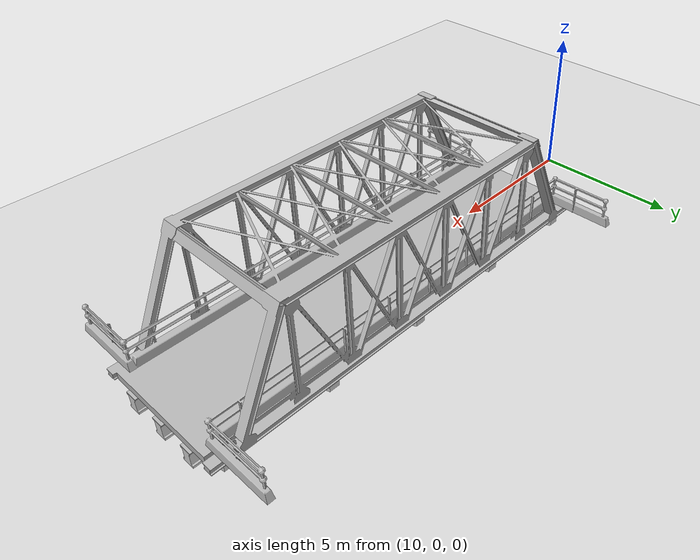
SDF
<?xml version="1.0" ?>
<sdf version="1.10">
  <world name="px4_bridge_world">

    <gravity>0 0 -9.8</gravity>
    <magnetic_field>6e-06 2.3e-05 -4.2e-05</magnetic_field>
    <atmosphere type="adiabatic"/>

    <scene>
      <grid>false</grid>
      <ambient>0.4 0.4 0.4 1</ambient>
      <background>0.7 0.7 0.7 1</background>
      <shadows>true</shadows>
    </scene>

    <!-- SENSOR ENABLING PLUGIN -->
    <plugin name='gz::sim::systems::Sensors' filename='gz-sim-sensors-system'>
      <render_engine>ogre2</render_engine>
    </plugin>

    <!-- SENSOR PLUGINS -->
    <plugin name='gz::sim::systems::Imu' filename='gz-sim-imu-system'/>
    <plugin name='gz::sim::systems::NavSat' filename='gz-sim-navsat-system'/>
    <plugin name='gz::sim::systems::Magnetometer' filename='gz-sim-magnetometer-system'/>
    <plugin name='gz::sim::systems::AirPressure' filename='gz-sim-air-pressure-system'/>

    <plugin filename="gz-sim-physics-system" name="gz::sim::systems::Physics">
      <max_step_size>0.004</max_step_size>
      <real_time_factor>1.0</real_time_factor>
      <real_time_update_rate>250</real_time_update_rate>
    </plugin>
    <plugin filename="gz-sim-scene-broadcaster-system" name="gz::sim::systems::SceneBroadcaster"/>
    <plugin filename="gz-sim-user-commands-system" name="gz::sim::systems::UserCommands"/>
    <plugin filename="gz-sim-sensors-system" name="gz::sim::systems::Sensors">
      <render_engine>ogre2</render_engine>
    </plugin>

    <spherical_coordinates>
      <surface_model>EARTH_WGS84</surface_model>
      <world_frame_orientation>ENU</world_frame_orientation>
      <latitude_deg>47.397742</latitude_deg>
      <longitude_deg>8.545594</longitude_deg>
      <elevation>488.0</elevation>
    </spherical_coordinates>

    <include>
      <uri>https://fuel.gazebosim.org/1.0/OpenRobotics/models/Sun</uri>
    </include>

    <include>
      <uri>https://fuel.gazebosim.org/1.0/OpenRobotics/models/Ground Plane</uri>
    </include>

    <model name="truss_bridge">
      <pose>20 0 0 0 0 1.57</pose>
      <static>true</static>
      <link name="link">
        <collision name="collision">
          <geometry>
            <mesh>
              <uri>model://truss_bridge/meshes/truss_bridge.dae</uri>
            </mesh>
          </geometry>
        </collision>
        <visual name="visual">
          <geometry>
            <mesh>
              <uri>model://truss_bridge/meshes/truss_bridge.dae</uri>
            </mesh>
          </geometry>
        </visual>
      </link>
    </model>

  </world>
</sdf>
